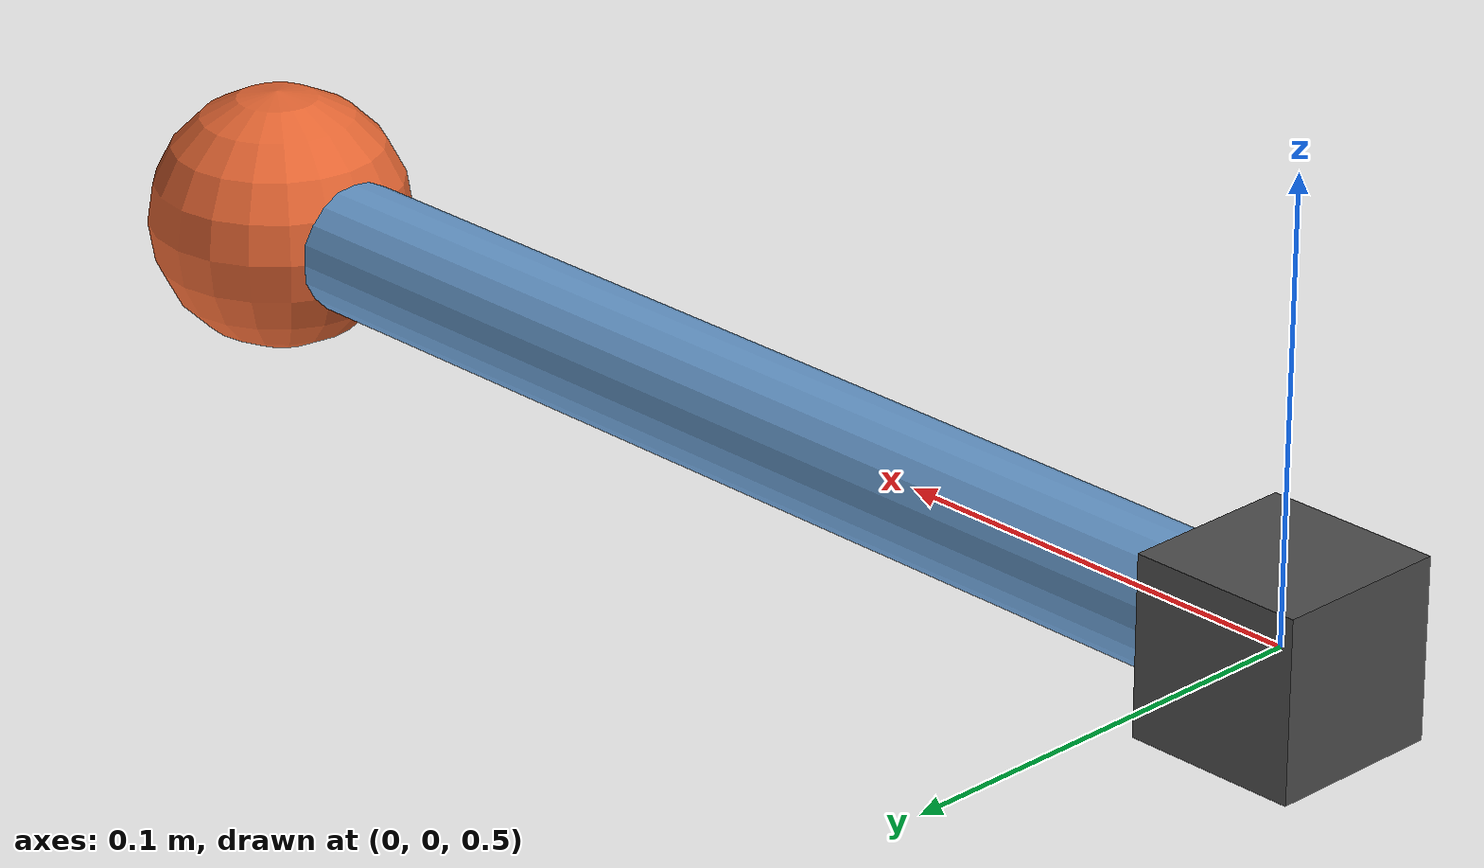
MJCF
<?xml version="1.0" ?>
<mujoco model="actuator_demo">
  <option timestep="0.001" gravity="0 0 -9.81"/>

  <visual>
    <headlight diffuse="0.6 0.6 0.6" ambient="0.3 0.3 0.3" specular="0 0 0"/>
    <rgba haze="0.15 0.25 0.35 1"/>
    <global azimuth="90" elevation="-10"/>
  </visual>

  <asset>
    <texture type="skybox" builtin="gradient" rgb1="0.3 0.5 0.7" rgb2="0 0 0"
             width="512" height="3072"/>
    <texture type="2d" name="groundplane" builtin="checker" mark="edge"
             rgb1="0.2 0.3 0.4" rgb2="0.1 0.2 0.3" markrgb="0.8 0.8 0.8"
             width="300" height="300"/>
    <material name="groundplane" texture="groundplane" texuniform="true"
              texrepeat="5 5" reflectance="0.2"/>
  </asset>

  <worldbody>
    <light pos="0 -1 2" dir="0 1 -1" directional="true"/>
    <geom name="floor" type="plane" size="0 0 0.05" material="groundplane"/>

    <body name="pivot" pos="0 0 0.5">
      <geom type="box" size="0.02 0.02 0.02" rgba="0.3 0.3 0.3 1"
            contype="0" conaffinity="0"/>

      <body name="arm">
        <joint name="hinge" type="hinge" axis="0 1 0" damping="0.01"/>
        <geom name="shaft" type="capsule" fromto="0 0 0 0.3 0 0"
              size="0.015" rgba="0.4 0.6 0.8 1" mass="0.05"
              contype="0" conaffinity="0"/>
        <body name="tip" pos="0.3 0 0">
          <geom name="tip_mass" type="sphere" size="0.03" rgba="0.9 0.4 0.2 1"
                mass="1.0" contype="0" conaffinity="0"/>
        </body>
      </body>
    </body>
  </worldbody>

  <actuator>
    <motor name="torque" joint="hinge" gear="1.0"
           ctrllimited="true" ctrlrange="-10 10"/>
  </actuator>
</mujoco>
